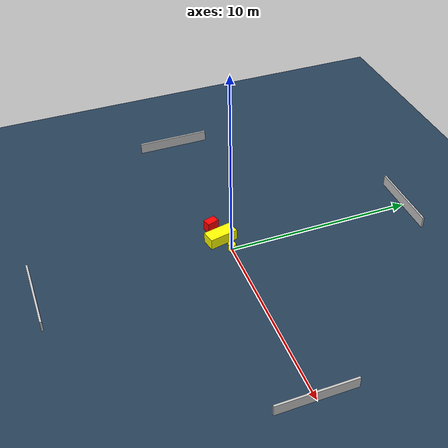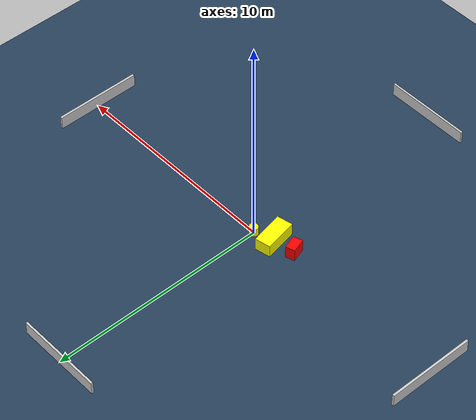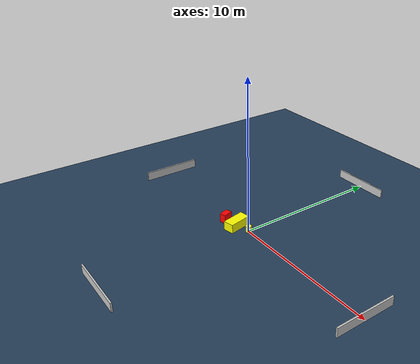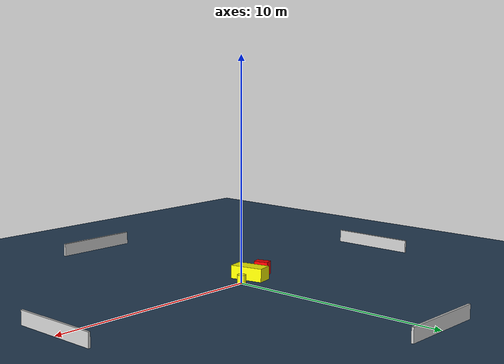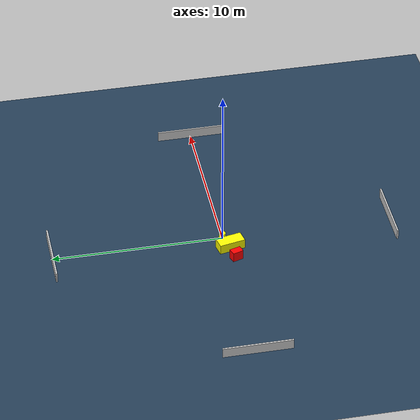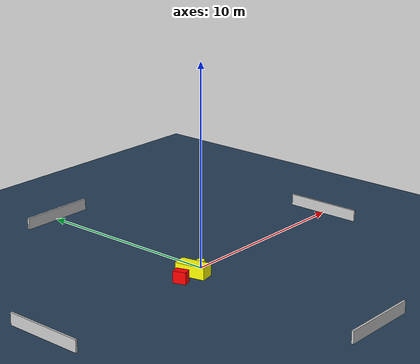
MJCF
<?xml version="1.0" ?>
<mujoco model="generated_environment">
  <option timestep="0.01" integrator="RK4" cone="elliptic"/>
  <default>
    <geom density="1"/>
  </default>
  <asset>
    <texture builtin="gradient" height="3072" name="skybox" rgb1="0.3 0.5 0.7" rgb2="0 0 0" type="skybox" width="512"/>
    <texture builtin="checker" height="300" name="groundplane" rgb1="0.2 0.3 0.4" rgb2="0.1 0.2 0.3" type="2d" width="300"/>
    <material name="groundplane" reflectance="0.2" texrepeat="5 5" texture="groundplane"/>
  </asset>
  <worldbody>
    <light dir="0 0 -1" directional="true" pos="0 0 1.5"/>
    <geom condim="3" friction="0.5 0.005 0.001" material="groundplane" name="floor" pos="0 0 0" size="0 0 0.05" type="plane"/>
    <body name="walls">
      <geom name="wall_1" condim="4" pos="-10.0 0.0 0.3" rgba="0.800000011920929 0.800000011920929 0.800000011920929 1.0" size="0.05 2.0 0.3" type="box"/>
      <geom name="wall_2" condim="4" pos="10.0 0.0 0.3" rgba="0.800000011920929 0.800000011920929 0.800000011920929 1.0" size="0.05 2.0 0.3" type="box"/>
      <geom name="wall_3" condim="4" pos="0.0 -10.0 0.3" rgba="0.800000011920929 0.800000011920929 0.800000011920929 1.0" size="2.0 0.05 0.3" type="box"/>
      <geom name="wall_4" condim="4" pos="0.0 10.0 0.3" rgba="0.800000011920929 0.800000011920929 0.800000011920929 1.0" size="2.0 0.05 0.3" type="box"/>
    </body>
    <body name="robot">
      <joint name="joint_x" type="slide" pos="0 0 0" axis="1 0 0"/>
      <joint name="joint_y" type="slide" pos="0 0 0" axis="0 1 0"/>
      <geom name="robot" type="cylinder" pos="0.0 0.0 0.2" size="0.2 0.2 0.0" mass="5.0" friction="1.0 0.005 0.0001" condim="4" rgba="1.0 1.0 0.0 1.0"/>
    </body>
    <body name="obstacle_1_movable">
      <geom name="obstacle_1_movable" condim="4" pos="-0.8826619979415472 -0.2917840612589805 0.3" euler="0 0 11.538088848240893" friction="0.0 0.005 0.001" rgba="1.0 1.0 0.0 1.0" size="0.36086723955623 0.7689173845979433 0.3" type="box" mass="0.1"/>
      <joint type="free"/>
    </body>
    <body name="obstacle_2_static">
      <geom name="obstacle_2_static" condim="4" pos="-1.9079456510336077 -0.4514633121443208 0.3" euler="0 0 17.713593663201973" friction="0.0 0.005 0.001" rgba="1.0 0.0 0.0 1.0" size="0.21582580726291808 0.3258732143647542 0.3" type="box"/>
    </body>
  </worldbody>
  <actuator>
    <motor name="actuator_x" joint="joint_x" gear="1" ctrlrange="-1 1"/>
    <motor name="actuator_y" joint="joint_y" gear="1" ctrlrange="-1 1"/>
  </actuator>
</mujoco>
